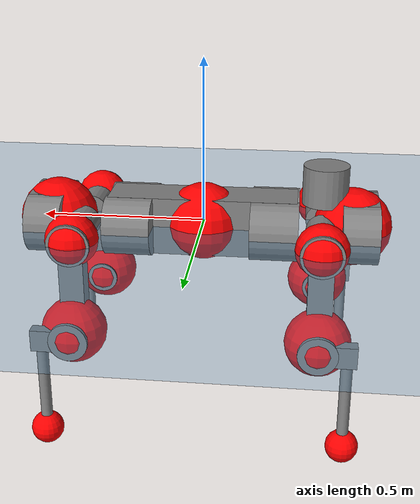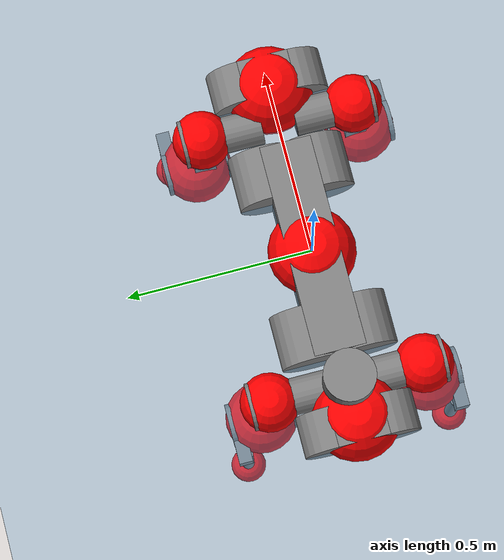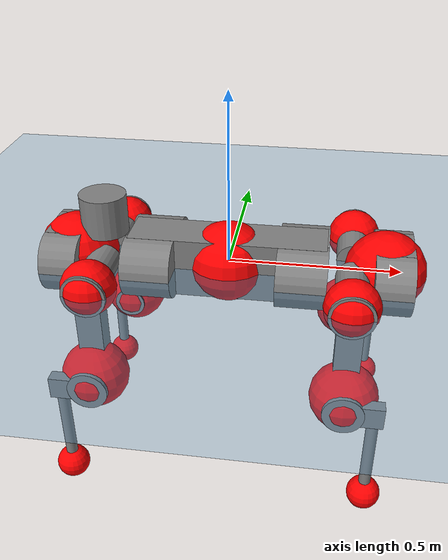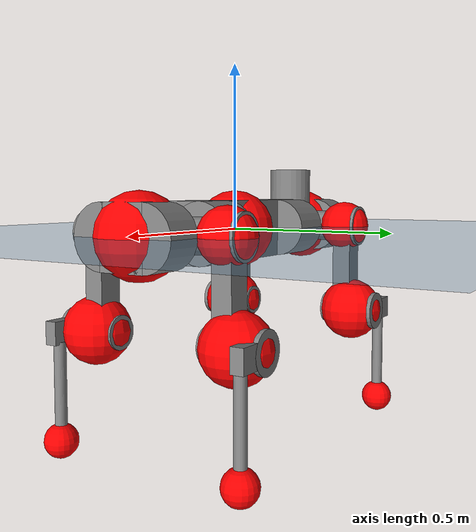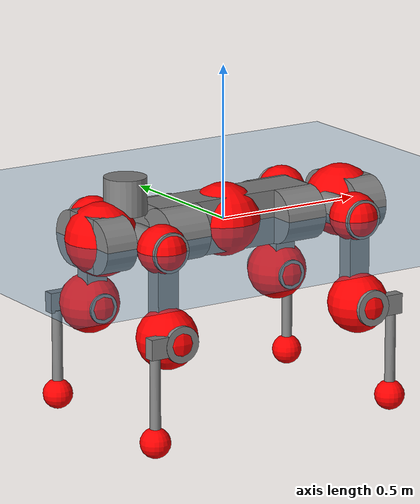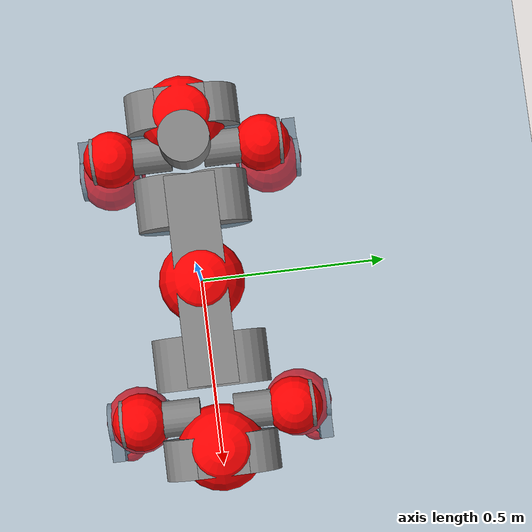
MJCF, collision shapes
<mujoco model="anymal_c">
  <compiler angle="radian" assetdir="assets" balanceinertia="true" inertiafromgeom="false"/>

  <option timestep="0.005" density="1.2" viscosity="2e-05"/>

  <size nkey="1"/>

  <visual>
    <quality shadowsize="8192"/>
    <map shadowclip="0.5"/>
  </visual>

  <default>
    <default class="/">
      <material specular="0" shininess="0.25"/>
      <geom contype="0" conaffinity="0" group="1" solref="-1000 -80"/>
      <site size="0.01 0.005 0.005" group="5"/>
      <general forcelimited="true" forcerange="-80 80" biastype="affine" gainprm="80" biasprm="0 -80 -2"/>
      <default class="anymal_c">
        <joint armature="0.01" damping="0.01" frictionloss="0.1"/>
        <default class="visual">
          <geom type="mesh" group="2"/>
          <default class="visual_zflip"/>
        </default>
        <default class="collision">
          <geom type="cylinder" group="3"/>
          <default class="foot">
            <geom size="0.03 0 0" type="sphere" condim="6" priority="1" friction="0.8 0.02 0.01" solimp="0.015 1 0.03"/>
          </default>
        </default>
      </default>
      <default class="reward_collision_sphere">
        <geom group="5" rgba="1 0 0 1"/>
      </default>
    </default>
  </default>

  <asset>
    <texture type="skybox" colorspace="auto" name="//unnamed_texture_0" builtin="gradient" rgb1="0.95 0.95 0.95" rgb2="0.95 0.95 0.95" width="100" height="600"/>
    <texture type="2d" colorspace="auto" name="texplane" builtin="checker" rgb1="0.345 0.575 0.748" rgb2="0.345 0.575 0.748" markrgb="1 1 1" width="512" height="512"/>
    <texture type="2d" colorspace="linear" name="base" file="base.png"/>
    <texture type="2d" colorspace="linear" name="top_shell" file="top_shell.png"/>
    <texture type="2d" colorspace="linear" name="bottom_shell" file="bottom_shell.png"/>
    <texture type="2d" colorspace="linear" name="remote" file="remote.png"/>
    <texture type="2d" colorspace="linear" name="hatch" file="hatch.png"/>
    <texture type="2d" colorspace="linear" name="handle" file="handle.png"/>
    <texture type="2d" colorspace="linear" name="face" file="face.png"/>
    <texture type="2d" colorspace="linear" name="battery" file="battery.png"/>
    <texture type="2d" colorspace="linear" name="lidar_cage" file="lidar_cage.png"/>
    <texture type="2d" colorspace="linear" name="depth_camera" file="depth_camera.png"/>
    <texture type="2d" colorspace="linear" name="wide_angle_camera" file="wide_angle_camera.png"/>
    <texture type="2d" colorspace="linear" name="lidar" file="lidar.png"/>
    <texture type="2d" colorspace="linear" name="drive" file="drive.png"/>
    <texture type="2d" colorspace="linear" name="hip_l" file="hip_l.png"/>
    <texture type="2d" colorspace="linear" name="shank_l" file="shank_l.png"/>
    <texture type="2d" colorspace="linear" name="foot" file="foot.png"/>
    <texture type="2d" colorspace="linear" name="thigh" file="thigh.png"/>
    <texture type="2d" colorspace="linear" name="shank_r" file="shank_r.png"/>
    <texture type="2d" colorspace="linear" name="hip_r" file="hip_r.png"/>
    <material name="MatPlane" class="/" texture="texplane" texuniform="true" texrepeat="2 2" specular="0.9" shininess="0.5"/>
    <material name="black_plastic" class="/" rgba="0.007 0.007 0.007 1"/>
    <material name="green" class="/" rgba="0.052 0.178 0.033 1"/>
    <material name="red" class="/" rgba="0.178 0.006 0.005 1"/>
    <material name="yellow" class="/" rgba="0.178 0.119 0.006 1"/>
    <material name="lwl" class="/" rgba="0.8 0.8 0.8 1"/>
    <material name="base" class="/" texture="base"/>
    <material name="top_shell" class="/" texture="top_shell"/>
    <material name="bottom_shell" class="/" texture="bottom_shell"/>
    <material name="hip_l" class="/" texture="hip_l"/>
    <material name="thigh" class="/" texture="thigh"/>
    <material name="shank_l" class="/" texture="shank_l"/>
    <material name="foot" class="/" texture="foot"/>
    <material name="hip_r" class="/" texture="hip_r"/>
    <material name="shank" class="/" texture="shank_r"/>
    <material name="hatch" class="/" texture="hatch"/>
    <material name="remote" class="/" texture="remote"/>
    <material name="handle" class="/" texture="handle"/>
    <material name="face" class="/" texture="face"/>
    <material name="depth_camera" class="/" texture="depth_camera"/>
    <material name="wide_angle_camera" class="/" texture="wide_angle_camera"/>
    <material name="battery" class="/" texture="battery"/>
    <material name="lidar_cage" class="/" texture="lidar_cage"/>
    <material name="lidar" class="/" texture="lidar"/>
    <material name="drive" class="/" texture="drive"/>
    <mesh name="base_0" class="/" file="base_0.obj"/>
    <mesh name="base_1" class="/" file="base_1.obj"/>
    <mesh name="base_2" class="/" file="base_2.obj"/>
    <mesh name="base_3" class="/" file="base_3.obj"/>
    <mesh name="base_4" class="/" file="base_4.obj"/>
    <mesh name="base_5" class="/" file="base_5.obj"/>
    <mesh name="top_shell" class="/" file="top_shell.obj"/>
    <mesh name="bottom_shell" class="/" file="bottom_shell.obj"/>
    <mesh name="remote" class="/" file="remote.obj"/>
    <mesh name="handle" class="/" file="handle.obj"/>
    <mesh name="face" class="/" file="face.obj"/>
    <mesh name="wide_angle_camera" class="/" file="wide_angle_camera.obj"/>
    <mesh name="depth_camera" class="/" file="depth_camera.obj"/>
    <mesh name="battery" class="/" file="battery.obj"/>
    <mesh name="lidar_cage" class="/" file="lidar_cage.obj"/>
    <mesh name="lidar" class="/" file="lidar.obj"/>
    <mesh name="drive" class="/" file="drive.obj"/>
    <mesh name="hip_l" class="/" file="hip_l.obj"/>
    <mesh name="thigh" class="/" file="thigh.obj"/>
    <mesh name="shank_l" class="/" file="shank_l.obj"/>
    <mesh name="foot" class="/" file="foot.obj"/>
    <mesh name="hip_r" class="/" file="hip_r.obj"/>
    <mesh name="hatch" class="/" file="hatch.obj"/>
    <mesh name="shank_r" class="/" file="shank_r.obj"/>
  </asset>

  <worldbody>
    <geom name="floor" class="/" size="100 100 0.125" type="plane" group="0" material="MatPlane"/>
    <light name="toplight_shadow" class="/" pos="0 0 5" dir="0.0990148 0.0990148 -0.990148" type="directional" ambient="0.04 0.04 0.04" diffuse="0.55 0.55 0.55" specular="0.12 0.12 0.12"/>
    <light name="toplight_fill" class="/" pos="0 0 5" dir="0.0990148 0.0990148 -0.990148" type="directional" castshadow="false" ambient="0.04 0.04 0.04" diffuse="0.3 0.3 0.3" specular="0.08 0.08 0.08"/>
    <body name="trunk" childclass="anymal_c" pos="-0.000170496 -0.000142117 -0.000420667" quat="1 0.000411405 -2.59684e-05 6.24597e-05">
      <inertial pos="0.000822361 -0.000473268 0.0489756" quat="0.499545 0.498784 0.501598 0.500068" mass="18.2911" diaginertia="0.658536 0.516919 0.194789"/>
      <joint name="//unnamed_joint_0" type="free" armature="0" damping="0" frictionloss="0"/>
      <geom name="//unnamed_geom_1" class="visual" material="green" mesh="base_0"/>
      <geom name="//unnamed_geom_2" class="visual" material="yellow" mesh="base_1"/>
      <geom name="//unnamed_geom_3" class="visual" material="red" mesh="base_2"/>
      <geom name="//unnamed_geom_4" class="visual" material="black_plastic" mesh="base_3"/>
      <geom name="//unnamed_geom_5" class="visual" material="lwl" mesh="base_4"/>
      <geom name="//unnamed_geom_6" class="visual" material="base" mesh="base_5"/>
      <geom name="trunk_1" class="collision" size="0.285099 0.068817 0.088479" type="box"/>
      <geom name="trunk_2" class="collision" size="0.088479 0.0712747" pos="0.21905 0.0674846 0" quat="0.707107 0 0.707107 0"/>
      <geom name="trunk_3" class="collision" size="0.088479 0.0712747" pos="-0.21905 0.0674846 0" quat="0.707107 0 0.707107 0"/>
      <geom name="trunk_4" class="collision" size="0.088479 0.0712747" pos="0.21905 -0.0674846 0" quat="0.707107 0 0.707107 0"/>
      <geom name="trunk_5" class="collision" size="0.088479 0.0712747" pos="-0.21905 -0.0674846 0" quat="0.707107 0 0.707107 0"/>
      <geom name="//unnamed_geom_12" class="visual" material="top_shell" mesh="top_shell"/>
      <geom name="//unnamed_geom_13" class="visual" material="bottom_shell" mesh="bottom_shell"/>
      <geom name="//unnamed_geom_14" class="visual" material="remote" mesh="remote"/>
      <geom name="//unnamed_geom_15" class="visual" material="handle" mesh="handle"/>
      <geom name="//unnamed_geom_16" class="visual" pos="0.417454 0 0" quat="1 0 0 0" material="face" mesh="face"/>
      <geom name="trunk_6" class="collision" size="0.0540705 0.068817 0.088479" pos="0.472846 0 0" type="box"/>
      <geom name="//unnamed_geom_18" class="collision" size="0.088479 0.0540705" pos="0.472846 0.0674846 0" quat="0.707107 0 0.707107 0"/>
      <geom name="//unnamed_geom_19" class="collision" size="0.088479 0.0540705" pos="0.472846 -0.0674846 0" quat="0.707107 0 0.707107 0"/>
      <geom name="//unnamed_geom_20" class="visual" pos="0.464939 0 -0.0283402" quat="0.965926 0 0.258819 0" material="depth_camera" mesh="depth_camera"/>
      <geom name="//unnamed_geom_21" class="visual" pos="0.516656 0 0.0146423" material="wide_angle_camera" mesh="wide_angle_camera"/>
      <geom name="//unnamed_geom_22" class="visual_zflip" pos="-0.417454 0 0" quat="0 0 0 1" material="face" mesh="face"/>
      <geom name="trunk_7" class="collision" size="0.0540705 0.068817 0.088479" pos="-0.472846 0 0" quat="0 0 0 1" type="box"/>
      <geom name="//unnamed_geom_24" class="collision" size="0.088479 0.0540705" pos="-0.472846 -0.0674846 0" quat="0 -0.707107 0 0.707107"/>
      <geom name="//unnamed_geom_25" class="collision" size="0.088479 0.0540705" pos="-0.472846 0.0674846 0" quat="0 -0.707107 0 0.707107"/>
      <geom name="//unnamed_geom_26" class="visual" pos="-0.464939 0 -0.0283402" quat="0 -0.258819 0 0.965926" material="depth_camera" mesh="depth_camera"/>
      <geom name="//unnamed_geom_27" class="visual_zflip" pos="-0.516656 0 0.0146423" quat="0 0 0 1" material="wide_angle_camera" mesh="wide_angle_camera"/>
      <geom name="//unnamed_geom_28" class="visual" material="battery" mesh="battery"/>
      <geom name="//unnamed_geom_29" class="visual" pos="0 0.0731462 0.0286346" quat="0.683013 -0.183013 0.183013 0.683013" material="depth_camera" mesh="depth_camera"/>
      <geom name="//unnamed_geom_30" class="visual" pos="0 -0.0731462 0.0286346" quat="0.683013 0.183013 0.183013 -0.683013" material="depth_camera" mesh="depth_camera"/>
      <geom name="//unnamed_geom_31" class="visual" pos="-0.366594 0 0.0718909" quat="1 0 0 0" material="lidar_cage" mesh="lidar_cage"/>
      <geom name="trunk_8" class="collision" size="0.068817 0.058986" pos="-0.366594 0 0.130577"/>
      <geom name="//unnamed_geom_33" class="visual" pos="-0.366594 -1.69173e-05 0.139087" quat="0.707107 0 0 -0.707107" material="lidar" mesh="lidar"/>
      <geom name="//unnamed_geom_34" class="visual" pos="0.302037 0.100268 -2.42235e-10" quat="0.258819 0.965926 0 0" material="drive" mesh="drive"/>
      <geom name="//unnamed_geom_35" class="visual" pos="0.302037 -0.100268 2.42235e-10" quat="0.258819 -0.965926 0 0" material="drive" mesh="drive"/>
      <geom name="//unnamed_geom_36" class="visual" pos="-0.302037 0.100268 2.42235e-10" quat="0 0 0.965926 -0.258819" material="drive" mesh="drive"/>
      <geom name="//unnamed_geom_37" class="visual" pos="-0.302037 -0.100268 -2.42235e-10" quat="0 0 -0.965926 -0.258819" material="drive" mesh="drive"/>
      <geom name="//unnamed_geom_38" class="visual" pos="0.116827 0 0.0714019" quat="1 0 0 0" material="hatch" mesh="hatch"/>
      <geom name="//unnamed_geom_39" class="reward_collision_sphere" size="0.117972"/>
      <geom name="//unnamed_geom_40" class="reward_collision_sphere" size="0.117972" pos="0.453207 0 0"/>
      <geom name="//unnamed_geom_41" class="reward_collision_sphere" size="0.117972" pos="-0.453207 0 0"/>
      <site name="imu" pos="0.254321 0.00821959 0.0416318" size="0.009831"/>
      <camera name="track" pos="0 -1.92813 0" quat="0.707107 0.707107 0 0" mode="trackcom"/>
      <camera name="ego_camera" pos="0.453207 0 -0.0391243" quat="-0.5 -0.5 0.5 0.5"/>
      <body name="LF_HIP" pos="0.30291 0.101055 0.00073734" quat="0.258908 0.965902 -0.00010147 -0.0001547">
        <inertial pos="0.0571936 -0.0140157 -0.00799683" quat="-0.128498 0.709568 -0.135379 0.679466" mass="2.56317" diaginertia="0.00596901 0.00402568 0.00289151"/>
        <joint name="LF_HAA" pos="0 0 0" axis="0.999999 -0.000520611 -0.00108157" range="-0.717211 0.474793" armature="0.00968366" damping="0.00587759" frictionloss="0.101907"/>
        <geom name="//unnamed_geom_42" class="visual" pos="0 -1.42496e-05 2.34048e-06" quat="0.258819 -0.965926 0 0" material="hip_l" mesh="hip_l"/>
        <geom name="//unnamed_geom_43" class="visual" pos="0.0603269 -0.0725369 -0.041983" quat="0.183013 -0.683013 0.683013 0.183013" material="drive" mesh="drive"/>
        <geom name="//unnamed_geom_44" class="collision" size="0.049155 0.068817" pos="0.0603269 -0.01153 -0.00675384" quat="-0.353553 -0.612372 0.612372 -0.353553"/>
        <body name="LF_THIGH" pos="0.0615819 -0.0695695 -0.0418594" quat="0.183091 -0.683032 0.682916 0.183225">
          <inertial pos="0.0309132 2.59337e-05 -0.241207" quat="0.993066 -0.00466853 -0.0805565 0.0854961" mass="2.93998" diaginertia="0.0312977 0.0245117 0.00374029"/>
          <joint name="LF_HFE" pos="0 0 0" axis="0.999998 0.000986833 -0.00159291" stiffness="0.00335378" range="-3.13925 3.12263" armature="0.0097134" damping="0.00713615" frictionloss="0.102961"/>
          <geom name="//unnamed_geom_45" class="visual" pos="0.000856736 1.35002e-06 0" quat="0.707107 0 0 -0.707107" material="thigh" mesh="thigh"/>
          <geom name="//unnamed_geom_46" class="collision" size="0.0639015 0.039324" pos="0.040285 0 0" quat="0.5 0.5 -0.5 -0.5"/>
          <geom name="//unnamed_geom_47" class="collision" size="0.0368662 0.029493 0.138926" pos="0.0302138 0 -0.13822" quat="0.707107 0 0 -0.707107" type="box"/>
          <geom name="//unnamed_geom_48" class="visual" pos="0.101015 0 -0.278761" quat="1 0 0 0" material="drive" mesh="drive"/>
          <geom name="//unnamed_geom_49" class="collision" size="0.049155 0.068817" pos="0.0305159 0 -0.278761" quat="0.707107 0 0.707107 0"/>
          <geom name="//unnamed_geom_50" class="reward_collision_sphere" size="0.078648" pos="0.0251782 0 0"/>
          <body name="LF_SHANK" pos="0.101367 -4.71118e-05 -0.279177" quat="1 0.000123181 -4.58805e-05 -2.00324e-05">
            <inertial pos="0.00534512 -0.0586123 -0.078058" quat="0.992909 -0.116091 -0.00111744 -0.0255465" mass="0.55632" diaginertia="0.0104588 0.00765216 0.001001"/>
            <joint name="LF_KFE" pos="0 0 0" axis="0.999997 -0.00203783 0.00125257" range="-3.15625 3.14353" armature="0.00968005" damping="0.0100934" frictionloss="0.0990101"/>
            <geom name="//unnamed_geom_51" class="visual" pos="0.000279363 0.00148958 0" quat="0.707107 0 0 -0.707107" material="shank_l" mesh="shank_l"/>
            <geom name="LF_kfe_act" class="collision" size="0.058986 0.019662" pos="0.0201425 0 0" quat="0.5 0.5 -0.5 -0.5"/>
            <geom name="//unnamed_geom_53" class="collision" size="0.0565273 0.0331796 0.0186789" pos="0.0201425 -0.0554328 0" quat="0.5 0.5 -0.5 -0.5" type="box"/>
            <geom name="//unnamed_geom_54" class="visual" pos="0.0131429 -0.0843095 -0.330571" quat="0.382683 0 0 -0.92388" material="foot" mesh="foot"/>
            <geom name="LF_calf" class="collision" size="0.0172042 0.138865" pos="0.013143 -0.0847896 -0.165286" quat="0.707107 0 0 -0.707107"/>
            <geom name="LF_foot" class="foot" size="0.029937" pos="0.013143 -0.0847896 -0.308564" quat="0.707107 0 0 -0.707107"/>
            <geom name="//unnamed_geom_57" class="reward_collision_sphere" size="0.09831" pos="-0.0503563 0 0"/>
            <geom name="//unnamed_geom_58" class="reward_collision_sphere" size="0.049155" pos="0.013143 -0.0847896 -0.308564"/>
            <site name="LF_foot" class="foot" pos="0.013143 -0.0847896 -0.308564" quat="0.707107 0 0 -0.707107" size="0.009831"/>
          </body>
        </body>
      </body>
      <body name="RF_HIP" pos="0.301844 -0.100604 0.000386748" quat="0.258817 -0.965926 9.42035e-07 -6.28247e-07">
        <inertial pos="0.0580465 0.013702 -0.00744324" quat="0.13181 0.67954 0.123275 0.711094" mass="2.66282" diaginertia="0.0061232 0.00415865 0.00297923"/>
        <joint name="RF_HAA" pos="0 0 0" axis="0.999996 0.000107992 -0.00275219" range="-0.483297 0.724562" armature="0.00998452" damping="0.0101886" frictionloss="0.0957001"/>
        <geom name="//unnamed_geom_59" class="visual" pos="0 1.42494e-05 2.34047e-06" quat="0.258819 0.965926 0 0" material="hip_r" mesh="hip_r"/>
        <geom name="//unnamed_geom_60" class="visual" pos="0.0603269 0.0725369 -0.041983" quat="0.183013 0.683013 0.683013 -0.183013" material="drive" mesh="drive"/>
        <geom name="//unnamed_geom_61" class="collision" size="0.049155 0.068817" pos="0.0603269 0.01153 -0.00675384" quat="-0.353553 0.612372 0.612372 0.353553"/>
        <body name="RF_THIGH" pos="0.0597018 0.0705844 -0.0416943" quat="0.183036 0.682954 0.683071 -0.182992">
          <inertial pos="0.0319461 0.000149497 -0.239117" quat="0.992487 -0.00550652 -0.0793046 0.0930073" mass="2.89061" diaginertia="0.0314733 0.0247289 0.0037586"/>
          <joint name="RF_HFE" pos="0 0 0" axis="1 -6.32965e-05 9.45691e-05" stiffness="0.00852106" range="-3.14942 3.12931" armature="0.0101971" damping="0.0107412" frictionloss="0.0946384"/>
          <geom name="//unnamed_geom_62" class="visual" pos="0.000856736 1.35002e-06 0" quat="0.707107 0 0 -0.707107" material="thigh" mesh="thigh"/>
          <geom name="//unnamed_geom_63" class="collision" size="0.0639015 0.039324" pos="0.040285 0 0" quat="0.5 0.5 0.5 0.5"/>
          <geom name="//unnamed_geom_64" class="collision" size="0.0368662 0.029493 0.138926" pos="0.0302138 0 -0.13822" quat="0.707107 0 0 0.707107" type="box"/>
          <geom name="//unnamed_geom_65" class="visual" pos="0.101015 0 -0.278761" quat="1 0 0 0" material="drive" mesh="drive"/>
          <geom name="//unnamed_geom_66" class="collision" size="0.049155 0.068817" pos="0.0305159 0 -0.278761" quat="0.707107 0 0.707107 0"/>
          <geom name="//unnamed_geom_67" class="reward_collision_sphere" size="0.078648" pos="0.0251782 0 0"/>
          <body name="RF_SHANK" pos="0.101717 0.000295303 -0.278798" quat="1 -0.000346377 1.62375e-05 -0.000242712">
            <inertial pos="0.00610258 0.0591281 -0.0786562" quat="0.993532 0.110772 -0.00311493 0.0247794" mass="0.550942" diaginertia="0.0104035 0.00775172 0.000999078"/>
            <joint name="RF_KFE" pos="0 0 0" axis="0.999989 -0.00469633 -0.000224119" range="-3.14865 3.1545" armature="0.00975332" damping="0.0120042" frictionloss="0.0941434"/>
            <geom name="//unnamed_geom_68" class="visual" pos="0.000279361 -0.00148957 0" quat="0.707107 0 0 0.707107" material="shank" mesh="shank_r"/>
            <geom name="RF_kfe_act" class="collision" size="0.058986 0.019662" pos="0.0201425 0 0" quat="0.5 0.5 0.5 0.5"/>
            <geom name="//unnamed_geom_70" class="collision" size="0.0565273 0.0331796 0.0186789" pos="0.0201425 0.0554328 0" quat="0.5 0.5 0.5 0.5" type="box"/>
            <geom name="//unnamed_geom_71" class="visual" pos="0.0131431 0.0843095 -0.330571" quat="0.382683 0 0 0.92388" material="foot" mesh="foot"/>
            <geom name="RF_calf" class="collision" size="0.0172042 0.138865" pos="0.013143 0.0847896 -0.165286" quat="0.707107 0 0 0.707107"/>
            <geom name="RF_foot" class="foot" size="0.0287255" pos="0.013143 0.0847896 -0.308564" quat="0.707107 0 0 0.707107"/>
            <geom name="//unnamed_geom_74" class="reward_collision_sphere" size="0.09831" pos="-0.0503563 0 0"/>
            <geom name="//unnamed_geom_75" class="reward_collision_sphere" size="0.049155" pos="0.013143 0.0847896 -0.308564"/>
            <site name="RF_foot" class="foot" pos="0.013143 0.0847896 -0.308564" quat="0.707107 0 0 0.707107" size="0.009831"/>
          </body>
        </body>
      </body>
      <body name="LH_HIP" pos="-0.300912 0.101096 6.81991e-05" quat="-7.45886e-05 -0.000156102 0.965872 -0.259021">
        <inertial pos="0.0572825 0.0138242 -0.00919726" quat="0.13502 0.67848 0.128026 0.710665" mass="2.67" diaginertia="0.00625741 0.00412296 0.00301383"/>
        <joint name="LH_HAA" pos="0 0 0" axis="0.999999 -0.000629217 0.00128433" stiffness="0.00155198" range="-0.494831 0.711433" armature="0.00974224" damping="0.00357113" frictionloss="0.0981402"/>
        <geom name="//unnamed_geom_76" class="visual" pos="0 1.42494e-05 2.34047e-06" quat="-0.258819 -0.965926 0 0" material="hip_r" mesh="hip_r"/>
        <geom name="//unnamed_geom_77" class="visual" pos="0.0603269 0.0725369 -0.041983" quat="0.183013 0.683013 0.683013 -0.183013" material="drive" mesh="drive"/>
        <geom name="//unnamed_geom_78" class="collision" size="0.049155 0.068817" pos="0.0603269 0.01153 -0.00675384" quat="-0.353553 0.612372 0.612372 0.353553"/>
        <body name="LH_THIGH" pos="0.0595818 0.0710085 -0.0417951" quat="0.182803 0.683107 0.682927 -0.18319">
          <inertial pos="0.029663 -0.000367991 -0.241099" quat="0.992749 -0.00611799 -0.0810503 0.0885565" mass="2.96495" diaginertia="0.0310716 0.0248832 0.00374823"/>
          <joint name="LH_HFE" pos="0 0 0" axis="0.999999 0.00133079 -0.000509018" range="-3.12294 3.15468" armature="0.0100672" damping="0.0104656" frictionloss="0.0980854"/>
          <geom name="//unnamed_geom_79" class="visual" pos="0.000856736 1.35002e-06 0" quat="0.707107 0 0 -0.707107" material="thigh" mesh="thigh"/>
          <geom name="//unnamed_geom_80" class="collision" size="0.0639015 0.039324" pos="0.040285 0 0" quat="0.5 0.5 -0.5 -0.5"/>
          <geom name="//unnamed_geom_81" class="collision" size="0.0368662 0.029493 0.138926" pos="0.0302138 0 -0.13822" quat="0.707107 0 0 -0.707107" type="box"/>
          <geom name="//unnamed_geom_82" class="visual" pos="0.101015 0 -0.278761" quat="1 0 0 0" material="drive" mesh="drive"/>
          <geom name="//unnamed_geom_83" class="collision" size="0.049155 0.068817" pos="0.0305159 0 -0.278761" quat="0.707107 0 0.707107 0"/>
          <geom name="//unnamed_geom_84" class="reward_collision_sphere" size="0.078648" pos="0.0251782 0 0"/>
          <body name="LH_SHANK" pos="0.101468 -0.000830053 -0.27837" quat="1 9.24352e-05 3.64206e-05 -1.00458e-05">
            <inertial pos="0.00458001 0.0592851 -0.0785793" quat="0.99249 0.119008 -0.00135429 0.0282639" mass="0.568735" diaginertia="0.0108243 0.00786244 0.00101878"/>
            <joint name="LH_KFE" pos="0 0 0" axis="0.999995 -0.00129523 0.00282303" range="-3.14211 3.15366" armature="0.0102125" damping="0.0105804" frictionloss="0.0983326"/>
            <geom name="//unnamed_geom_85" class="visual" pos="0.000279361 -0.00148957 0" quat="-0.707107 0 0 -0.707107" material="shank" mesh="shank_r"/>
            <geom name="LH_kfe_act" class="collision" size="0.058986 0.019662" pos="0.0201425 0 0" quat="0.5 0.5 -0.5 -0.5"/>
            <geom name="//unnamed_geom_87" class="collision" size="0.0565273 0.0331796 0.0186789" pos="0.0201425 0.0554328 0" quat="0.5 0.5 -0.5 -0.5" type="box"/>
            <geom name="//unnamed_geom_88" class="visual" pos="0.0131431 0.0843095 -0.330571" quat="-0.382683 0 0 -0.92388" material="foot" mesh="foot"/>
            <geom name="LH_calf" class="collision" size="0.0172042 0.138865" pos="0.013143 0.0847896 -0.165286" quat="0.707107 0 0 -0.707107"/>
            <geom name="LH_foot" class="foot" size="0.0293837" pos="0.013143 0.0847896 -0.308564" quat="0.707107 0 0 -0.707107"/>
            <geom name="//unnamed_geom_91" class="reward_collision_sphere" size="0.09831" pos="-0.0503563 0 0"/>
            <geom name="//unnamed_geom_92" class="reward_collision_sphere" size="0.049155" pos="0.013143 0.0847896 -0.308564"/>
            <site name="LH_foot" class="foot" pos="0.013143 0.0847896 -0.308564" quat="0.707107 0 0 -0.707107" size="0.009831"/>
          </body>
        </body>
      </body>
      <body name="RH_HIP" pos="-0.300545 -0.0999902 -0.000533497" quat="2.72299e-05 2.80472e-05 -0.965931 -0.258799">
        <inertial pos="0.0579728 -0.0157695 -0.00937357" quat="-0.131002 0.714418 -0.132816 0.674392" mass="2.59734" diaginertia="0.00596015 0.00403478 0.00289323"/>
        <joint name="RH_HAA" pos="0 0 0" axis="0.999989 -0.00170598 0.00446285" range="-0.734025 0.473161" armature="0.0101775" damping="0.0144673" frictionloss="0.0982622"/>
        <geom name="//unnamed_geom_93" class="visual" pos="0 -1.42496e-05 2.34048e-06" quat="-0.258819 0.965926 0 0" material="hip_l" mesh="hip_l"/>
        <geom name="//unnamed_geom_94" class="visual" pos="0.0603269 -0.0725369 -0.041983" quat="-0.183013 0.683013 -0.683013 -0.183013" material="drive" mesh="drive"/>
        <geom name="//unnamed_geom_95" class="collision" size="0.049155 0.068817" pos="0.0603269 -0.01153 -0.00675384" quat="0.353553 0.612372 -0.612372 0.353553"/>
        <body name="RH_THIGH" pos="0.0612924 -0.0707972 -0.0420281" quat="-0.183045 0.683008 -0.683012 -0.183002">
          <inertial pos="0.0309544 -0.000932815 -0.239872" quat="0.993138 -0.00548465 -0.0811089 0.0840745" mass="2.9629" diaginertia="0.0318193 0.0251736 0.00376736"/>
          <joint name="RH_HFE" pos="0 0 0" axis="0.999997 0.00150262 0.00171822" range="-3.15796 3.14232" armature="0.00957075" damping="0.00345754" frictionloss="0.0983239"/>
          <geom name="//unnamed_geom_96" class="visual" pos="0.000856736 1.35002e-06 0" quat="0.707107 0 0 -0.707107" material="thigh" mesh="thigh"/>
          <geom name="//unnamed_geom_97" class="collision" size="0.0639015 0.039324" pos="0.040285 0 0" quat="0.5 0.5 0.5 0.5"/>
          <geom name="//unnamed_geom_98" class="collision" size="0.0368662 0.029493 0.138926" pos="0.0302138 0 -0.13822" quat="0.707107 0 0 0.707107" type="box"/>
          <geom name="//unnamed_geom_99" class="visual" pos="0.101015 0 -0.278761" quat="1 0 0 0" material="drive" mesh="drive"/>
          <geom name="//unnamed_geom_100" class="collision" size="0.049155 0.068817" pos="0.0305159 0 -0.278761" quat="0.707107 0 0.707107 0"/>
          <geom name="//unnamed_geom_101" class="reward_collision_sphere" size="0.078648" pos="0.0251782 0 0"/>
          <body name="RH_SHANK" pos="0.10113 0.000557377 -0.279183" quat="1 -8.0306e-05 -9.5267e-06 0.000289557">
            <inertial pos="0.00553945 -0.058164 -0.078848" quat="0.993051 -0.114661 -0.00138951 -0.026452" mass="0.562016" diaginertia="0.0106612 0.00769097 0.00101187"/>
            <joint name="RH_KFE" pos="0 0 0" axis="0.999998 -0.00127137 -0.00145622" range="-3.12898 3.14546" armature="0.0099294" damping="0.0119904" frictionloss="0.0942449"/>
            <geom name="//unnamed_geom_102" class="visual" pos="0.000279363 0.00148958 0" quat="0.707107 0 0 -0.707107" material="shank_l" mesh="shank_l"/>
            <geom name="RH_kfe_act" class="collision" size="0.058986 0.019662" pos="0.0201425 0 0" quat="0.5 0.5 0.5 0.5"/>
            <geom name="//unnamed_geom_104" class="collision" size="0.0565273 0.0331796 0.0186789" pos="0.0201425 -0.0554328 0" quat="0.5 0.5 0.5 0.5" type="box"/>
            <geom name="//unnamed_geom_105" class="visual" pos="0.0131429 -0.0843095 -0.330571" quat="0.382683 0 0 -0.92388" material="foot" mesh="foot"/>
            <geom name="RH_calf" class="collision" size="0.0172042 0.138865" pos="0.013143 -0.0847896 -0.165286" quat="0.707107 0 0 0.707107"/>
            <geom name="RH_foot" class="foot" size="0.0287102" pos="0.013143 -0.0847896 -0.308564" quat="0.707107 0 0 0.707107"/>
            <geom name="//unnamed_geom_108" class="reward_collision_sphere" size="0.09831" pos="-0.0503563 0 0"/>
            <geom name="//unnamed_geom_109" class="reward_collision_sphere" size="0.049155" pos="0.013143 -0.0847896 -0.308564"/>
            <site name="RH_foot" class="foot" pos="0.013143 -0.0847896 -0.308564" quat="0.707107 0 0 0.707107" size="0.009831"/>
          </body>
        </body>
      </body>
    </body>
  </worldbody>

  <contact>
    <pair class="/" geom1="floor" geom2="LF_foot" name="//unnamed_contact_0"/>
    <pair class="/" geom1="floor" geom2="RF_foot" name="//unnamed_contact_1"/>
    <pair class="/" geom1="floor" geom2="LH_foot" name="//unnamed_contact_2"/>
    <pair class="/" geom1="floor" geom2="RH_foot" name="//unnamed_contact_3"/>
  </contact>

  <actuator>
    <general name="LF_HAA" class="/" joint="LF_HAA" forcerange="-80.5771 80.5771" gainprm="81.1745" biasprm="0 -81.1745 -1.93348"/>
    <general name="LF_HFE" class="/" joint="LF_HFE" forcerange="-76.1138 76.1138" gainprm="81.1745" biasprm="0 -81.1745 -1.93348"/>
    <general name="LF_KFE" class="/" joint="LF_KFE" forcerange="-79.4477 79.4477" gainprm="81.1745" biasprm="0 -81.1745 -1.93348"/>
    <general name="RF_HAA" class="/" joint="RF_HAA" forcerange="-78.2883 78.2883" gainprm="81.1745" biasprm="0 -81.1745 -1.93348"/>
    <general name="RF_HFE" class="/" joint="RF_HFE" forcerange="-78.8815 78.8815" gainprm="81.1745" biasprm="0 -81.1745 -1.93348"/>
    <general name="RF_KFE" class="/" joint="RF_KFE" forcerange="-77.4359 77.4359" gainprm="81.1745" biasprm="0 -81.1745 -1.93348"/>
    <general name="LH_HAA" class="/" joint="LH_HAA" forcerange="-79.4717 79.4717" gainprm="81.1745" biasprm="0 -81.1745 -1.93348"/>
    <general name="LH_HFE" class="/" joint="LH_HFE" forcerange="-80.8636 80.8636" gainprm="81.1745" biasprm="0 -81.1745 -1.93348"/>
    <general name="LH_KFE" class="/" joint="LH_KFE" forcerange="-77.112 77.112" gainprm="81.1745" biasprm="0 -81.1745 -1.93348"/>
    <general name="RH_HAA" class="/" joint="RH_HAA" forcerange="-78.9795 78.9795" gainprm="81.1745" biasprm="0 -81.1745 -1.93348"/>
    <general name="RH_HFE" class="/" joint="RH_HFE" forcerange="-79.9509 79.9509" gainprm="81.1745" biasprm="0 -81.1745 -1.93348"/>
    <general name="RH_KFE" class="/" joint="RH_KFE" forcerange="-80.0011 80.0011" gainprm="81.1745" biasprm="0 -81.1745 -1.93348"/>
  </actuator>

  <sensor>
    <gyro site="imu" name="imu_angular_velocity"/>
    <velocimeter site="imu" name="imu_linear_velocity"/>
    <framelinvel objtype="site" objname="LF_foot" name="LF_foot_global_linear_velocity"/>
    <framelinvel objtype="site" objname="RF_foot" name="RF_foot_global_linear_velocity"/>
    <framelinvel objtype="site" objname="LH_foot" name="LH_foot_global_linear_velocity"/>
    <framelinvel objtype="site" objname="RH_foot" name="RH_foot_global_linear_velocity"/>
  </sensor>

  <keyframe>
    <key name="home" qpos="0 0 0.55 1 0 0 0 0 0.4 -0.8 0 -0.4 0.8 0 -0.4 0.8 0 0.4 -0.8"/>
  </keyframe>
</mujoco>
